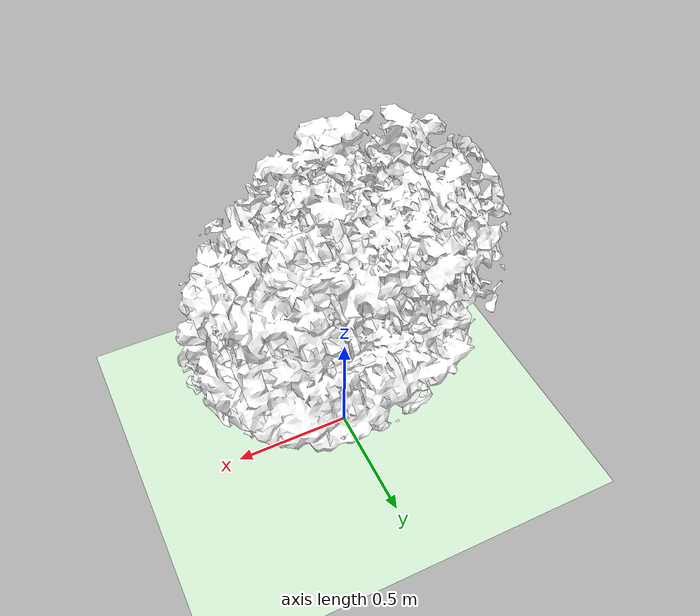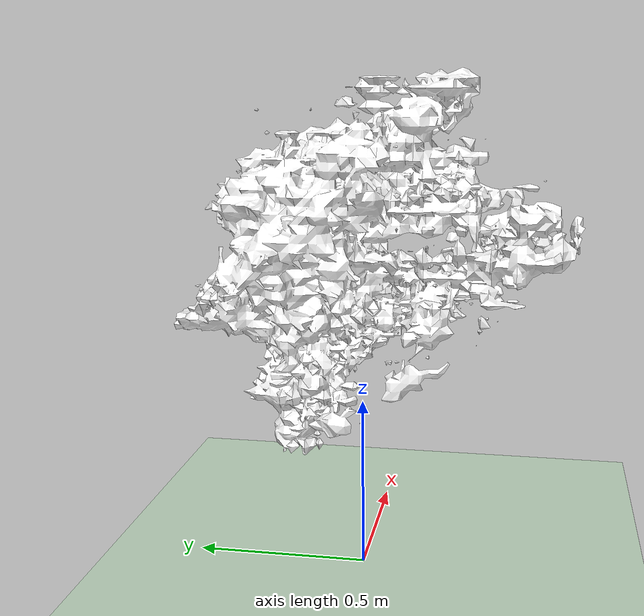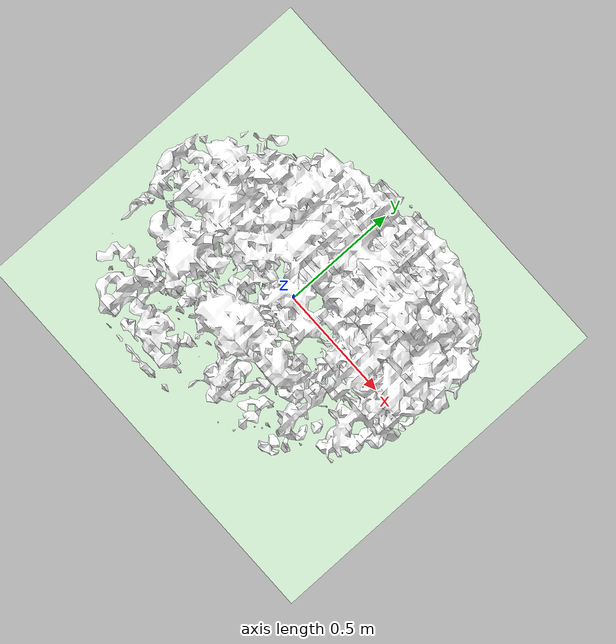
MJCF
<mujoco model="bluesoap">
  <asset>
    <mesh file="bluesoap/stl/bluesoap_level_70.stl" name="bluesoap_mesh" scale="1.0 1.0 1.0"/>
    <texture builtin="gradient" height="100" rgb1="1 1 1" rgb2="0 0 0" type="skybox" width="100"/>
    <texture builtin="flat" height="1278" mark="cross" markrgb="1 1 1" name="texgeom" random="0.01" rgb1="0.8 0.6 0.4" rgb2="0.8 0.6 0.4" type="cube" width="127"/>
    <texture builtin="checker" height="100" name="texplane" rgb1="0.8 0.8 0.8" rgb2="0.8 0.8 0.8" type="2d" width="100"/>
    <material name="MatPlane" reflectance="0.5" shininess="1" specular="1" texrepeat="60 60" texture="texplane"/>
    <material name="geom" texture="texgeom" texuniform="true"/>
  </asset>
  <worldbody>
    <light cutoff="100" diffuse="1 1 1" dir="-0 0 -1.3" directional="true" exponent="1" pos="0 0 1.3" specular=".1 .1 .1"/>
    <geom conaffinity="1" condim="3" material="MatPlane" name="floor" pos="0 0 0" rgba="0.8 0.9 0.8 1" size="40 40 40" type="plane"/>
    <body name="object">
      <joint type="free"/>
      <geom pos="0.0 0.0 1.00" quat="0 -1 0 0" rgba="0.99 0.99 0.99 1" mesh="bluesoap_mesh" type="mesh" solimp="0.998 0.998 0.001" solref="0.001 1" friction="0.75 0.3 0.1"  group="0" condim="4"/>
      <inertial pos="0.0 0.0 1.00" mass="1.0" diaginertia="0.13 0.13 0.13" />
    </body>
  </worldbody>
</mujoco>
